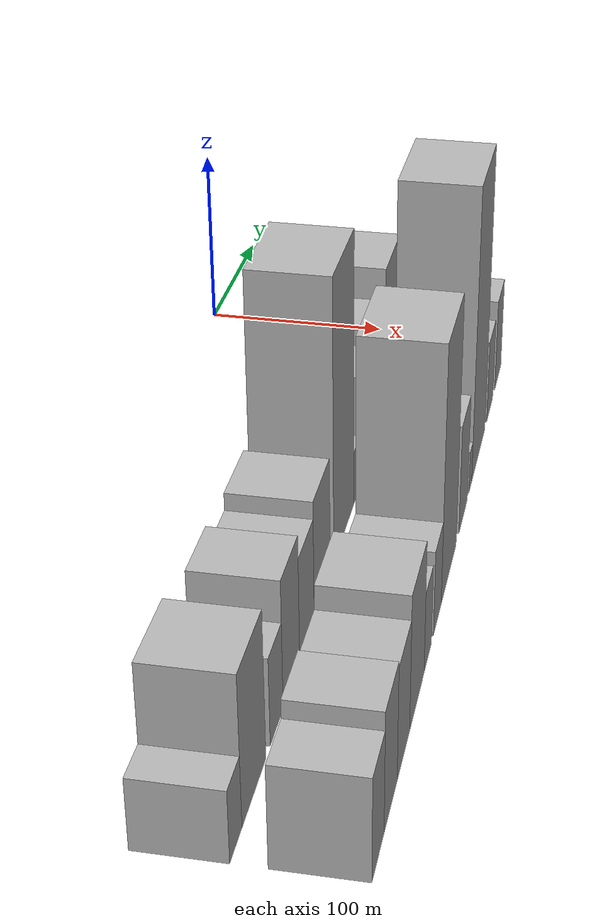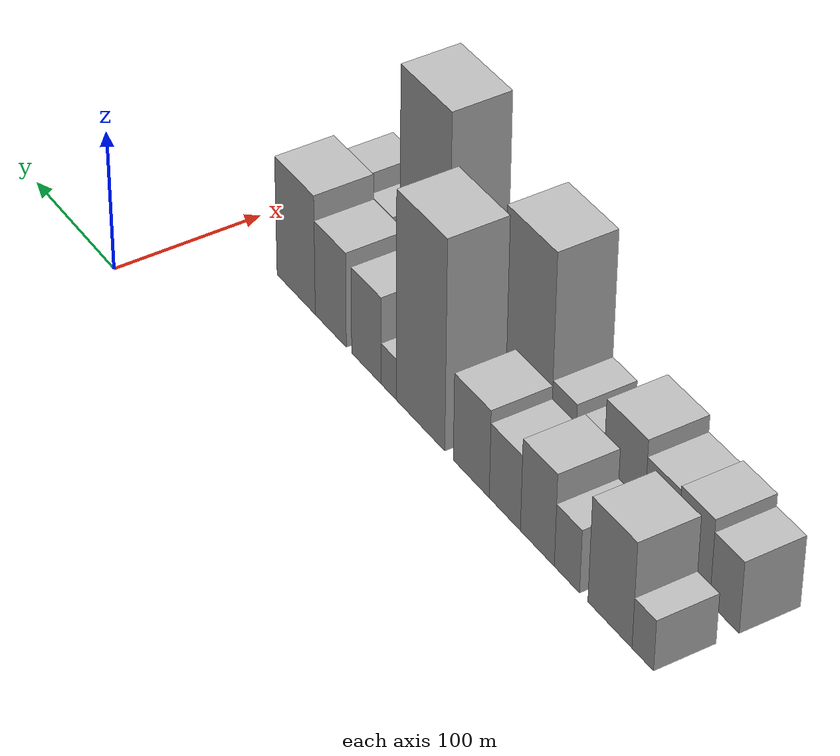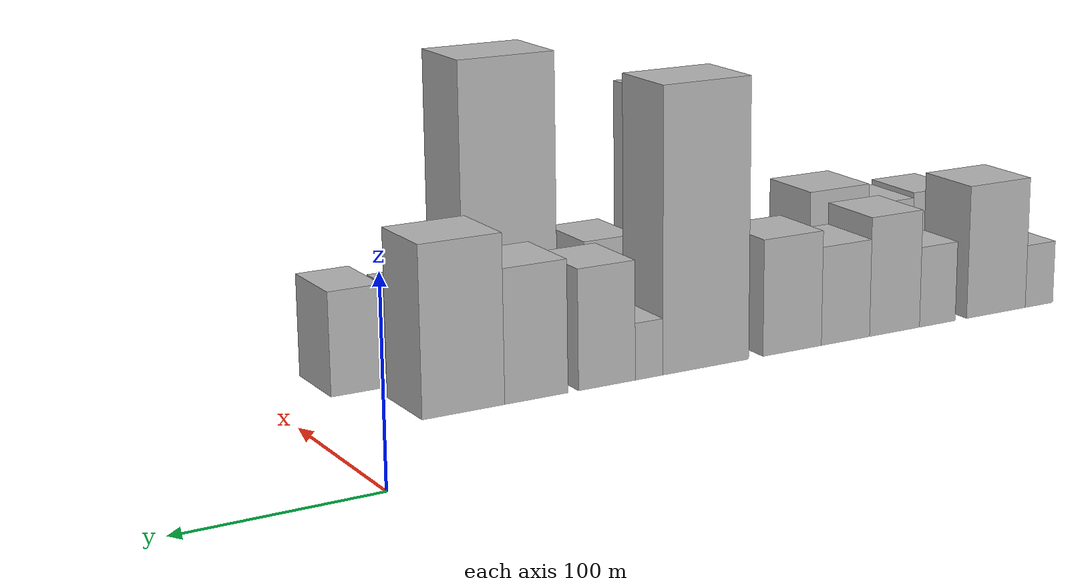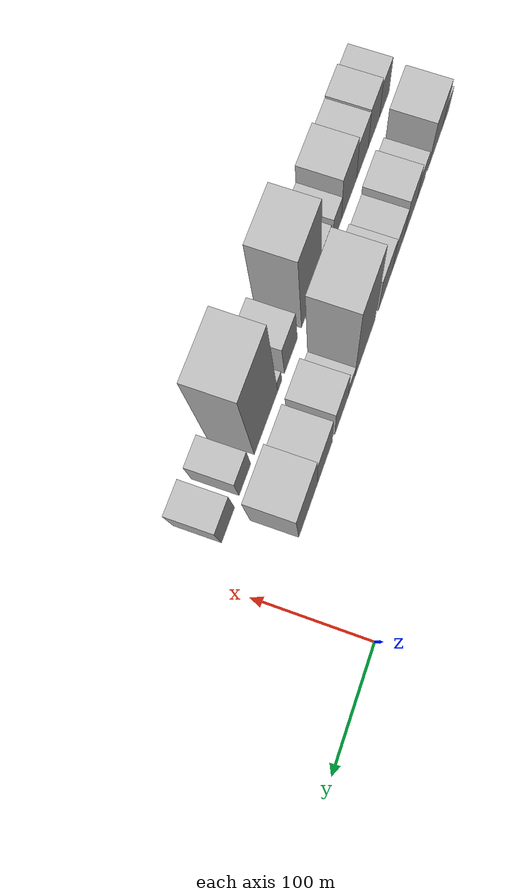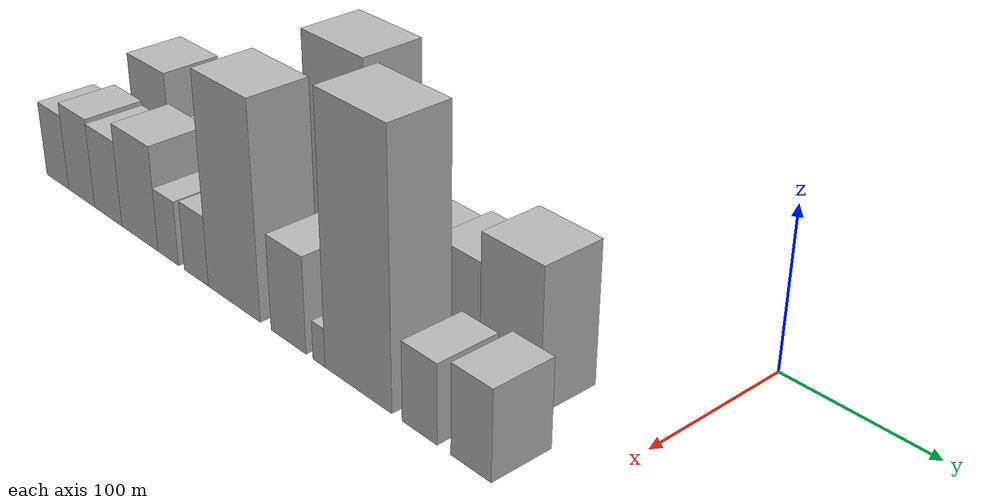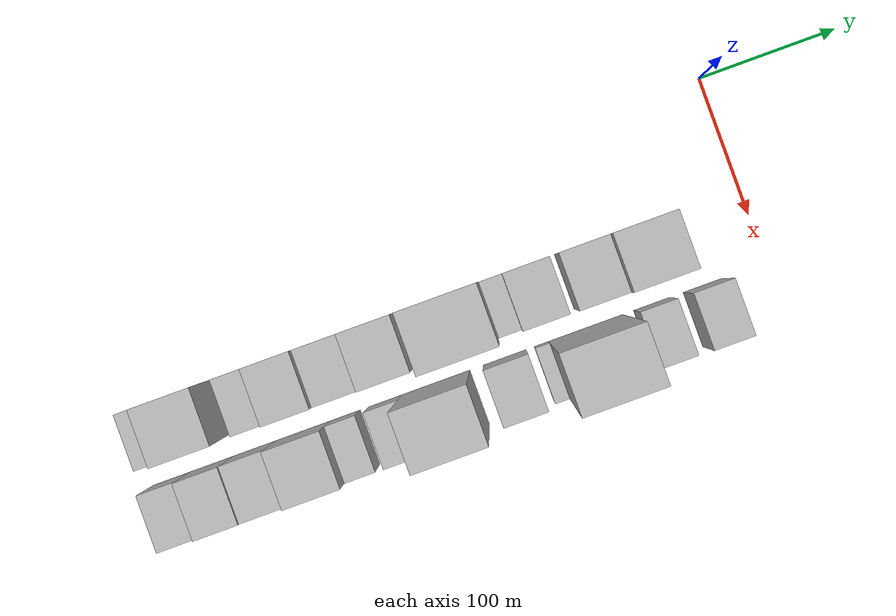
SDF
<sdf version="1.6">
 <world name="default">
  <model name="building_1">
   <static>1</static>
   <pose>100.0000 -439.9194 0 0.000000 0.000000 0.000000</pose>
   <link name="link">
    <pose>0 0 18.00 0 0 0</pose>
    <collision name="collision"><geometry><box><size>40.0000 20.1612 36.0000</size></box></geometry></collision>
    <visual name="visual">
     <cast_shadows>0</cast_shadows>
     <geometry><box><size>40.0000 20.1612 36.0000</size></box></geometry>
     <material>
      <script>
       <uri>model://HANNAS_wall/materials/scripts</uri>
       <uri>model://HANNAS_wall/materials/textures</uri>
       <name>vrc/HANNAS_wall</name>
      </script>
     </material>
    </visual>
   </link>
  </model>
  <model name="building_2">
   <static>1</static>
   <pose>100.0000 -408.8623 0 0.000000 0.000000 0.000000</pose>
   <link name="link">
    <pose>0 0 37.50 0 0 0</pose>
    <collision name="collision"><geometry><box><size>40.0000 41.9529 75.0000</size></box></geometry></collision>
    <visual name="visual">
     <cast_shadows>0</cast_shadows>
     <geometry><box><size>40.0000 41.9529 75.0000</size></box></geometry>
     <material>
      <script>
       <uri>model://HANNAS_wall/materials/scripts</uri>
       <uri>model://HANNAS_wall/materials/textures</uri>
       <name>vrc/HANNAS_wall</name>
      </script>
     </material>
    </visual>
   </link>
  </model>
  <model name="building_3">
   <static>1</static>
   <pose>100.0000 -367.5131 0 0.000000 0.000000 0.000000</pose>
   <link name="link">
    <pose>0 0 22.50 0 0 0</pose>
    <collision name="collision"><geometry><box><size>40.0000 24.7454 45.0000</size></box></geometry></collision>
    <visual name="visual">
     <cast_shadows>0</cast_shadows>
     <geometry><box><size>40.0000 24.7454 45.0000</size></box></geometry>
     <material>
      <script>
       <uri>model://HANNAS_wall/materials/scripts</uri>
       <uri>model://HANNAS_wall/materials/textures</uri>
       <name>vrc/HANNAS_wall</name>
      </script>
     </material>
    </visual>
   </link>
  </model>
  <model name="building_4">
   <static>1</static>
   <pose>100.0000 -338.2238 0 0.000000 0.000000 0.000000</pose>
   <link name="link">
    <pose>0 0 33.00 0 0 0</pose>
    <collision name="collision"><geometry><box><size>40.0000 33.8332 66.0000</size></box></geometry></collision>
    <visual name="visual">
     <cast_shadows>0</cast_shadows>
     <geometry><box><size>40.0000 33.8332 66.0000</size></box></geometry>
     <material>
      <script>
       <uri>model://HANNAS_wall/materials/scripts</uri>
       <uri>model://HANNAS_wall/materials/textures</uri>
       <name>vrc/HANNAS_wall</name>
      </script>
     </material>
    </visual>
   </link>
  </model>
  <model name="building_5">
   <static>1</static>
   <pose>100.0000 -305.4389 0 0.000000 0.000000 0.000000</pose>
   <link name="link">
    <pose>0 0 27.00 0 0 0</pose>
    <collision name="collision"><geometry><box><size>40.0000 31.7366 54.0000</size></box></geometry></collision>
    <visual name="visual">
     <cast_shadows>0</cast_shadows>
     <geometry><box><size>40.0000 31.7366 54.0000</size></box></geometry>
     <material>
      <script>
       <uri>model://HANNAS_wall/materials/scripts</uri>
       <uri>model://HANNAS_wall/materials/textures</uri>
       <name>vrc/HANNAS_wall</name>
      </script>
     </material>
    </visual>
   </link>
  </model>
  <model name="building_6">
   <static>1</static>
   <pose>100.0000 -270.8856 0 0.000000 0.000000 0.000000</pose>
   <link name="link">
    <pose>0 0 31.50 0 0 0</pose>
    <collision name="collision"><geometry><box><size>40.0000 37.3700 63.0000</size></box></geometry></collision>
    <visual name="visual">
     <cast_shadows>0</cast_shadows>
     <geometry><box><size>40.0000 37.3700 63.0000</size></box></geometry>
     <material>
      <script>
       <uri>model://HANNAS_wall/materials/scripts</uri>
       <uri>model://HANNAS_wall/materials/textures</uri>
       <name>vrc/HANNAS_wall</name>
      </script>
     </material>
    </visual>
   </link>
  </model>
  <model name="building_7">
   <static>1</static>
   <pose>100.0000 -217.0525 0 0.000000 0.000000 0.000000</pose>
   <link name="link">
    <pose>0 0 75.00 0 0 0</pose>
    <collision name="collision"><geometry><box><size>40.0000 52.2962 150.0000</size></box></geometry></collision>
    <visual name="visual">
     <cast_shadows>0</cast_shadows>
     <geometry><box><size>40.0000 52.2962 150.0000</size></box></geometry>
     <material>
      <script>
       <uri>model://HANNAS_wall/materials/scripts</uri>
       <uri>model://HANNAS_wall/materials/textures</uri>
       <name>vrc/HANNAS_wall</name>
      </script>
     </material>
    </visual>
   </link>
  </model>
  <model name="building_8">
   <static>1</static>
   <pose>100.0000 -182.6412 0 0.000000 0.000000 0.000000</pose>
   <link name="link">
    <pose>0 0 15.00 0 0 0</pose>
    <collision name="collision"><geometry><box><size>40.0000 16.5263 30.0000</size></box></geometry></collision>
    <visual name="visual">
     <cast_shadows>0</cast_shadows>
     <geometry><box><size>40.0000 16.5263 30.0000</size></box></geometry>
     <material>
      <script>
       <uri>model://HANNAS_wall/materials/scripts</uri>
       <uri>model://HANNAS_wall/materials/textures</uri>
       <name>vrc/HANNAS_wall</name>
      </script>
     </material>
    </visual>
   </link>
  </model>
  <model name="building_9">
   <static>1</static>
   <pose>100.0000 -157.9032 0 0.000000 0.000000 0.000000</pose>
   <link name="link">
    <pose>0 0 31.50 0 0 0</pose>
    <collision name="collision"><geometry><box><size>40.0000 32.9497 63.0000</size></box></geometry></collision>
    <visual name="visual">
     <cast_shadows>0</cast_shadows>
     <geometry><box><size>40.0000 32.9497 63.0000</size></box></geometry>
     <material>
      <script>
       <uri>model://HANNAS_wall/materials/scripts</uri>
       <uri>model://HANNAS_wall/materials/textures</uri>
       <name>vrc/HANNAS_wall</name>
      </script>
     </material>
    </visual>
   </link>
  </model>
  <model name="building_10">
   <static>1</static>
   <pose>100.0000 -117.6971 0 0.000000 0.000000 0.000000</pose>
   <link name="link">
    <pose>0 0 34.50 0 0 0</pose>
    <collision name="collision"><geometry><box><size>40.0000 35.4626 69.0000</size></box></geometry></collision>
    <visual name="visual">
     <cast_shadows>0</cast_shadows>
     <geometry><box><size>40.0000 35.4626 69.0000</size></box></geometry>
     <material>
      <script>
       <uri>model://HANNAS_wall/materials/scripts</uri>
       <uri>model://HANNAS_wall/materials/textures</uri>
       <name>vrc/HANNAS_wall</name>
      </script>
     </material>
    </visual>
   </link>
  </model>
  <model name="building_11">
   <static>1</static>
   <pose>100.0000 -77.6243 0 0.000000 0.000000 0.000000</pose>
   <link name="link">
    <pose>0 0 43.50 0 0 0</pose>
    <collision name="collision"><geometry><box><size>40.0000 44.6830 87.0000</size></box></geometry></collision>
    <visual name="visual">
     <cast_shadows>0</cast_shadows>
     <geometry><box><size>40.0000 44.6830 87.0000</size></box></geometry>
     <material>
      <script>
       <uri>model://HANNAS_wall/materials/scripts</uri>
       <uri>model://HANNAS_wall/materials/textures</uri>
       <name>vrc/HANNAS_wall</name>
      </script>
     </material>
    </visual>
   </link>
  </model>
  <model name="building_23">
   <static>1</static>
   <pose>155.0000 -436.3856 0 0.000000 0.000000 0.000000</pose>
   <link name="link">
    <pose>0 0 25.50 0 0 0</pose>
    <collision name="collision"><geometry><box><size>40.0000 27.2289 51.0000</size></box></geometry></collision>
    <visual name="visual">
     <cast_shadows>0</cast_shadows>
     <geometry><box><size>40.0000 27.2289 51.0000</size></box></geometry>
     <material>
      <script>
       <uri>model://HANNAS_wall/materials/scripts</uri>
       <uri>model://HANNAS_wall/materials/textures</uri>
       <name>vrc/HANNAS_wall</name>
      </script>
     </material>
    </visual>
   </link>
  </model>
  <model name="building_24">
   <static>1</static>
   <pose>155.0000 -407.1011 0 0.000000 0.000000 0.000000</pose>
   <link name="link">
    <pose>0 0 30.00 0 0 0</pose>
    <collision name="collision"><geometry><box><size>40.0000 31.3400 60.0000</size></box></geometry></collision>
    <visual name="visual">
     <cast_shadows>0</cast_shadows>
     <geometry><box><size>40.0000 31.3400 60.0000</size></box></geometry>
     <material>
      <script>
       <uri>model://HANNAS_wall/materials/scripts</uri>
       <uri>model://HANNAS_wall/materials/textures</uri>
       <name>vrc/HANNAS_wall</name>
      </script>
     </material>
    </visual>
   </link>
  </model>
  <model name="building_25">
   <static>1</static>
   <pose>155.0000 -375.5939 0 0.000000 0.000000 0.000000</pose>
   <link name="link">
    <pose>0 0 28.50 0 0 0</pose>
    <collision name="collision"><geometry><box><size>40.0000 31.6745 57.0000</size></box></geometry></collision>
    <visual name="visual">
     <cast_shadows>0</cast_shadows>
     <geometry><box><size>40.0000 31.6745 57.0000</size></box></geometry>
     <material>
      <script>
       <uri>model://HANNAS_wall/materials/scripts</uri>
       <uri>model://HANNAS_wall/materials/textures</uri>
       <name>vrc/HANNAS_wall</name>
      </script>
     </material>
    </visual>
   </link>
  </model>
  <model name="building_26">
   <static>1</static>
   <pose>155.0000 -339.7541 0 0.000000 0.000000 0.000000</pose>
   <link name="link">
    <pose>0 0 34.50 0 0 0</pose>
    <collision name="collision"><geometry><box><size>40.0000 40.0052 69.0000</size></box></geometry></collision>
    <visual name="visual">
     <cast_shadows>0</cast_shadows>
     <geometry><box><size>40.0000 40.0052 69.0000</size></box></geometry>
     <material>
      <script>
       <uri>model://HANNAS_wall/materials/scripts</uri>
       <uri>model://HANNAS_wall/materials/textures</uri>
       <name>vrc/HANNAS_wall</name>
      </script>
     </material>
    </visual>
   </link>
  </model>
  <model name="building_27">
   <static>1</static>
   <pose>155.0000 -308.9170 0 0.000000 0.000000 0.000000</pose>
   <link name="link">
    <pose>0 0 21.00 0 0 0</pose>
    <collision name="collision"><geometry><box><size>40.0000 21.6690 42.0000</size></box></geometry></collision>
    <visual name="visual">
     <cast_shadows>0</cast_shadows>
     <geometry><box><size>40.0000 21.6690 42.0000</size></box></geometry>
     <material>
      <script>
       <uri>model://HANNAS_wall/materials/scripts</uri>
       <uri>model://HANNAS_wall/materials/textures</uri>
       <name>vrc/HANNAS_wall</name>
      </script>
     </material>
    </visual>
   </link>
  </model>
  <model name="building_28">
   <static>1</static>
   <pose>155.0000 -279.9060 0 0.000000 0.000000 0.000000</pose>
   <link name="link">
    <pose>0 0 22.50 0 0 0</pose>
    <collision name="collision"><geometry><box><size>40.0000 24.3530 45.0000</size></box></geometry></collision>
    <visual name="visual">
     <cast_shadows>0</cast_shadows>
     <geometry><box><size>40.0000 24.3530 45.0000</size></box></geometry>
     <material>
      <script>
       <uri>model://HANNAS_wall/materials/scripts</uri>
       <uri>model://HANNAS_wall/materials/textures</uri>
       <name>vrc/HANNAS_wall</name>
      </script>
     </material>
    </visual>
   </link>
  </model>
  <model name="building_29">
   <static>1</static>
   <pose>155.0000 -242.6486 0 0.000000 0.000000 0.000000</pose>
   <link name="link">
    <pose>0 0 67.50 0 0 0</pose>
    <collision name="collision"><geometry><box><size>40.0000 50.1618 135.0000</size></box></geometry></collision>
    <visual name="visual">
     <cast_shadows>0</cast_shadows>
     <geometry><box><size>40.0000 50.1618 135.0000</size></box></geometry>
     <material>
      <script>
       <uri>model://HANNAS_wall/materials/scripts</uri>
       <uri>model://HANNAS_wall/materials/textures</uri>
       <name>vrc/HANNAS_wall</name>
      </script>
     </material>
    </visual>
   </link>
  </model>
  <model name="building_30">
   <static>1</static>
   <pose>155.0000 -191.8955 0 0.000000 0.000000 0.000000</pose>
   <link name="link">
    <pose>0 0 30.00 0 0 0</pose>
    <collision name="collision"><geometry><box><size>40.0000 31.3442 60.0000</size></box></geometry></collision>
    <visual name="visual">
     <cast_shadows>0</cast_shadows>
     <geometry><box><size>40.0000 31.3442 60.0000</size></box></geometry>
     <material>
      <script>
       <uri>model://HANNAS_wall/materials/scripts</uri>
       <uri>model://HANNAS_wall/materials/textures</uri>
       <name>vrc/HANNAS_wall</name>
      </script>
     </material>
    </visual>
   </link>
  </model>
  <model name="building_31">
   <static>1</static>
   <pose>155.0000 -165.0269 0 0.000000 0.000000 0.000000</pose>
   <link name="link">
    <pose>0 0 12.00 0 0 0</pose>
    <collision name="collision"><geometry><box><size>40.0000 10.3930 24.0000</size></box></geometry></collision>
    <visual name="visual">
     <cast_shadows>0</cast_shadows>
     <geometry><box><size>40.0000 10.3930 24.0000</size></box></geometry>
     <material>
      <script>
       <uri>model://HANNAS_wall/materials/scripts</uri>
       <uri>model://HANNAS_wall/materials/textures</uri>
       <name>vrc/HANNAS_wall</name>
      </script>
     </material>
    </visual>
   </link>
  </model>
  <model name="building_32">
   <static>1</static>
   <pose>155.0000 -132.5323 0 0.000000 0.000000 0.000000</pose>
   <link name="link">
    <pose>0 0 81.00 0 0 0</pose>
    <collision name="collision"><geometry><box><size>40.0000 54.5962 162.0000</size></box></geometry></collision>
    <visual name="visual">
     <cast_shadows>0</cast_shadows>
     <geometry><box><size>40.0000 54.5962 162.0000</size></box></geometry>
     <material>
      <script>
       <uri>model://HANNAS_wall/materials/scripts</uri>
       <uri>model://HANNAS_wall/materials/textures</uri>
       <name>vrc/HANNAS_wall</name>
      </script>
     </material>
    </visual>
   </link>
  </model>
  <model name="building_33">
   <static>1</static>
   <pose>155.0000 -83.9665 0 0.000000 0.000000 0.000000</pose>
   <link name="link">
    <pose>0 0 24.00 0 0 0</pose>
    <collision name="collision"><geometry><box><size>40.0000 26.5356 48.0000</size></box></geometry></collision>
    <visual name="visual">
     <cast_shadows>0</cast_shadows>
     <geometry><box><size>40.0000 26.5356 48.0000</size></box></geometry>
     <material>
      <script>
       <uri>model://HANNAS_wall/materials/scripts</uri>
       <uri>model://HANNAS_wall/materials/textures</uri>
       <name>vrc/HANNAS_wall</name>
      </script>
     </material>
    </visual>
   </link>
  </model>
  <model name="building_34">
   <static>1</static>
   <pose>155.0000 -46.2471 0 0.000000 0.000000 0.000000</pose>
   <link name="link">
    <pose>0 0 27.00 0 0 0</pose>
    <collision name="collision"><geometry><box><size>40.0000 28.9032 54.0000</size></box></geometry></collision>
    <visual name="visual">
     <cast_shadows>0</cast_shadows>
     <geometry><box><size>40.0000 28.9032 54.0000</size></box></geometry>
     <material>
      <script>
       <uri>model://HANNAS_wall/materials/scripts</uri>
       <uri>model://HANNAS_wall/materials/textures</uri>
       <name>vrc/HANNAS_wall</name>
      </script>
     </material>
    </visual>
   </link>
  </model>
 </world>
</sdf>
